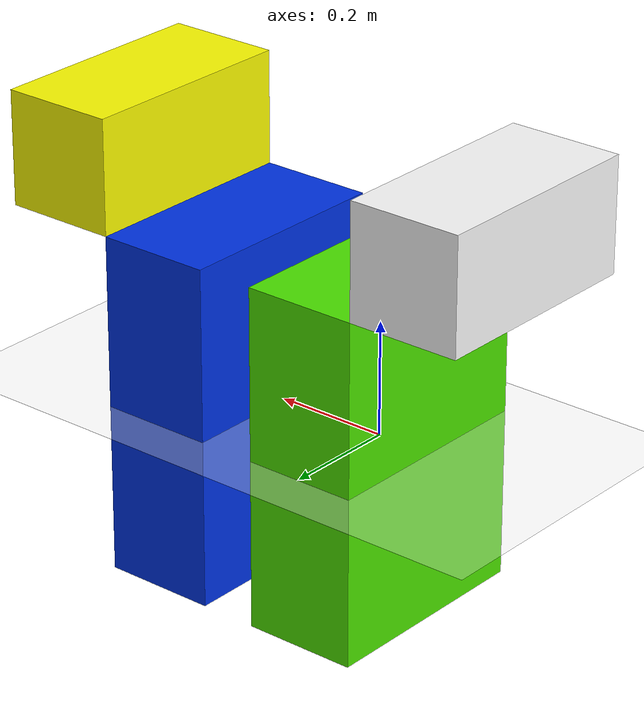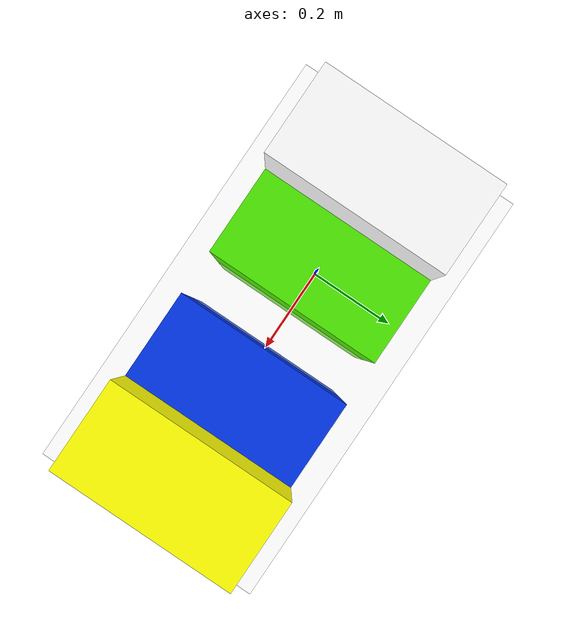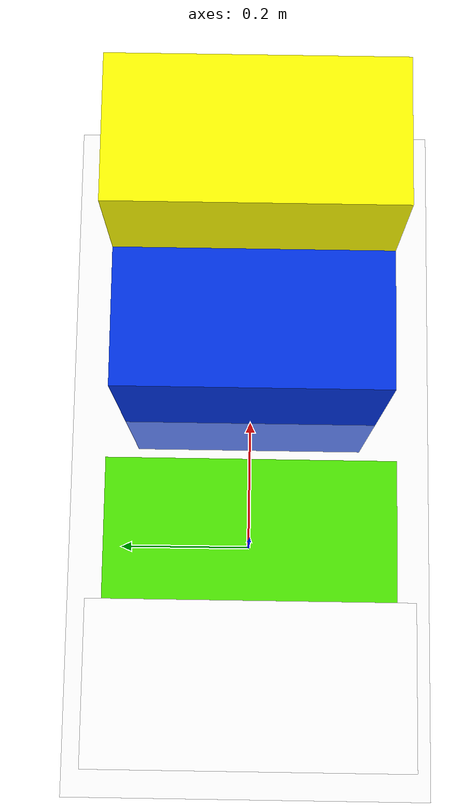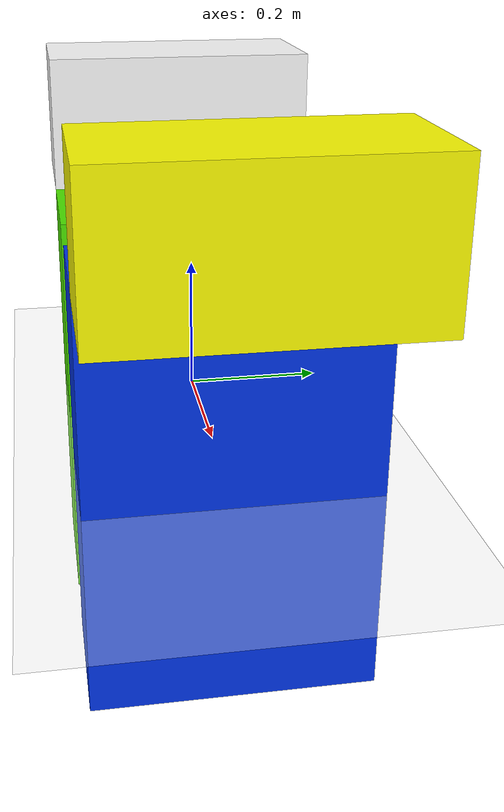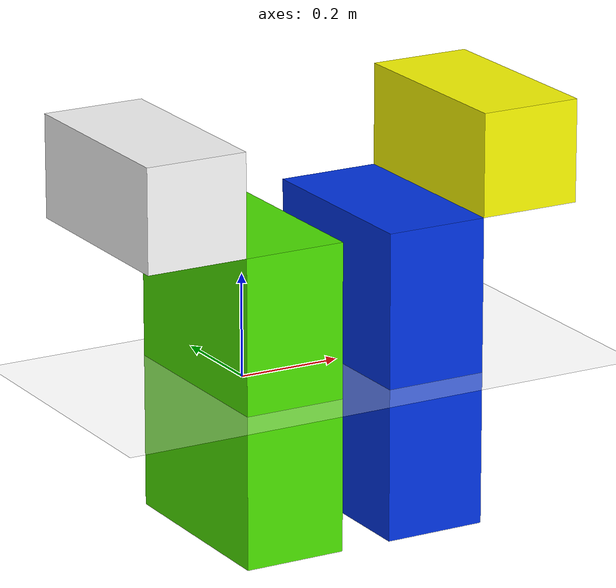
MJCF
<mujoco>
    <worldbody>
        <light diffuse="0.7 0.7 0.7" pos="0 0 2" dir="0 -1 0"/>
        <geom type="plane" size="1 1 0.1" rgba="1 1 1 1"/>
        <!-- green box -->
        <body pos="0 0 0">
            <joint type="free"/>

            <geom type="box" size="0.1 0.2 0.3" rgba="0.3 0.9 0 1"/>
            <body pos="-0.2 0 0.4">
                <joint name="whitejoint" type="hinge" axis="0 1 0" pos="0.1 0 -0.1"/>
                <geom type="box" size="0.1 0.2 0.1" rgba="1 1 1 1"/>
            </body>
            <body pos="0.3 0 0">
                <joint name="bluejoint" type="hinge" axis="1 0 0" pos="0 0 0"/>
                <geom type="box" size="0.1 0.2 0.3" rgba="0 0.2 0.9 1"/>
                <body pos="0.2 0 0.4">
                    <joint name="yellowjoint" type="hinge" axis="0 1 0" pos="-0.1 0 -0.1"/>
                    <geom type="box" size="0.1 0.2 0.1" rgba="1 1 0 1"/>
                </body>
            </body>
        </body>
    </worldbody>
    <actuator>
        <motor joint="bluejoint" name="bluej"/>
        <motor joint="whitejoint" name="whitej"/>
        <motor joint="yellowjoint" name="yellowj"/>
    </actuator>
</mujoco>
